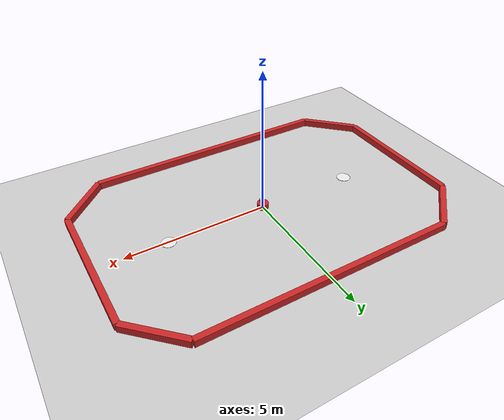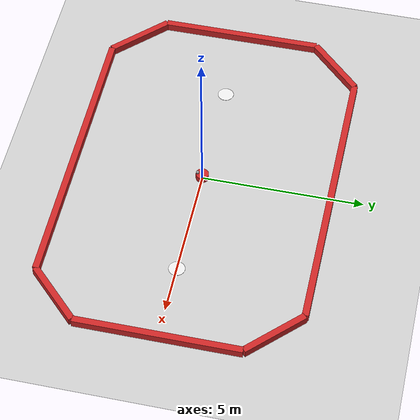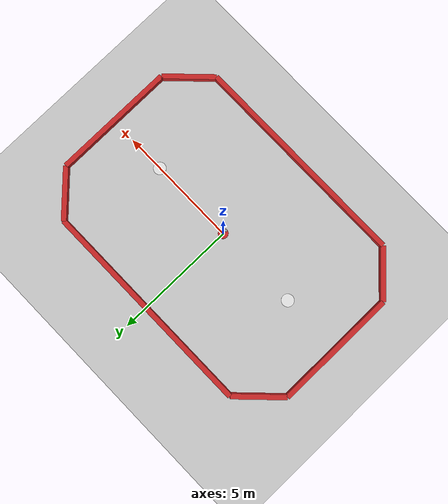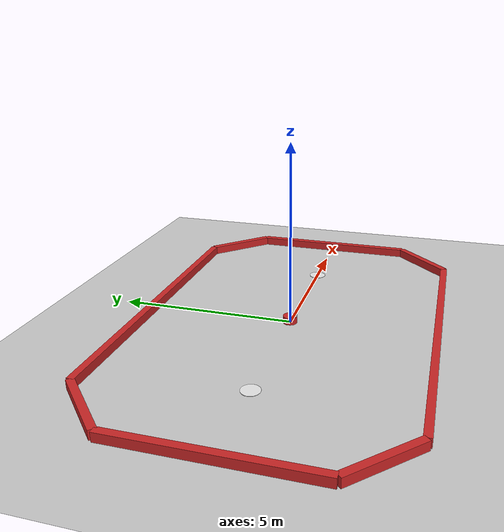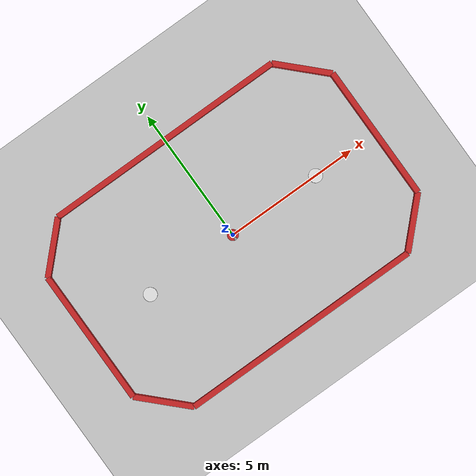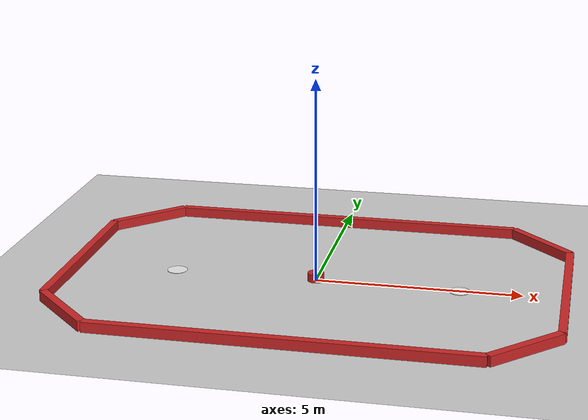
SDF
<?xml version="1.0"?>
<sdf version="1.4">
  <world name="default">
    <scene>
      <shadows>0</shadows>
    </scene>
    <physics type='ode'>
      <max_step_size>0.001</max_step_size>
      <real_time_factor>1</real_time_factor>
      <real_time_update_rate>2000</real_time_update_rate>
      <gravity>0 0 -9.8</gravity>
    </physics>

    <!-- World Camera -->
    <gui>
      <camera name='camera_view'>
	<pose>0 0 25 0 1.57079 1.57079</pose>
      </camera>
    </gui>

    <!-- Ground -->
    <include>
      <uri>model://ground_plane</uri>
    </include>

    <!-- Global light source -->
     <include>
      <uri>model://sun</uri>
    </include>

    <!-- Robot -->
    <include>
      <pose>0 0 0 0 0  -1.57079</pose>
      <name>Bug</name>
      <uri>model://DAC_Bug</uri>
    </include>

    <!-- Wall -->
    <include>
        <uri>model://DAC_Wall</uri>
    </include>

  </world>
</sdf>

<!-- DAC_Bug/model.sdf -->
<sdf version='1.4'>
  <!-- Robot model -->
  <model name="SDIC_Bug">
    <!-- Body elements -->
    <link name='bug'>
      <pose>0 0 .1 0 0 0</pose>
      <inertial>
	<mass>5</mass>
	<inertia>
	  <ixx>1</ixx>
	  <ixy>0</ixy>
	  <ixz>0</ixz>
	  <iyy>1</iyy>
	  <iyz>0</iyz>
	  <izz>1</izz>
	</inertia>
      </inertial>
      <collision name='collision'>
	<geometry>
	  <cylinder>
	    <radius>.2</radius>
	    <length>.2</length>
	  </cylinder>
	</geometry>
	<surface>
	  <friction>
	    <ode>
	      <mu>0.1</mu>
	      <mu2>0</mu2>
	      <slip1>0.0</slip1>
	      <slip2>0.0</slip2>
	    </ode>
	  </friction>
	</surface>
      </collision>

      <visual name='visual'>
	<geometry>
	  <cylinder>
	    <radius>.2</radius>
	    <length>.2</length>
	  </cylinder>
	</geometry>
	<material>
	  <script>
	    <uri>file://media/materials/scripts/gazebo.material</uri>
	    <name>Gazebo/Red</name>
	  </script>
	</material>
      </visual>

      <visual name='visualCamera'>
	<pose>0.15 0 .125 0 0 0</pose>
	<geometry>
	  <cylinder>
	    <radius>.05</radius>
	    <length>.05</length>
	  </cylinder>
	</geometry>
	<material>
	  <script>
	    <uri>file://media/materials/scripts/gazebo.material</uri>
	    <name>Gazebo/Grey</name>
	  </script>
	</material>
      </visual>

      <!-- Sensors -->
      <!-- Proximity sensor -->
      <sensor name="laser" type="ray">
	<pose>0 0 0.075 0 0 0 </pose>
	<ray>
	<scan>
	  <horizontal>
	    <samples>32</samples>
	    <resolution>1</resolution>
	    <min_angle>-3</min_angle>
	    <max_angle>3</max_angle>
	  </horizontal>
	</scan>
	<range>
	  <min>0.205</min>
	  <max>2.0</max>
	  <resolution>0.01</resolution>
	</range>
	<noise>
	  <type>gaussian</type>
	  <mean>0.0</mean>
	  <stddev>0.02</stddev>
	</noise>
      </ray>
      <always_on>1</always_on>
      <update_rate>25</update_rate>
      <visualize>0</visualize>
      </sensor>

      <!-- Proximity sensor -->
      <sensor name="laser_target" type="ray">
	<pose>0 0 0.25 0 0 0 </pose>
	<ray>
	<scan>
	  <horizontal>
	    <samples>32</samples>
	    <resolution>1</resolution>
	    <min_angle>-3</min_angle>
	    <max_angle>3</max_angle>
	  </horizontal>
	</scan>
	<range>
	  <min>0.26</min>
	  <max>2.5</max>
	  <resolution>0.01</resolution>
	</range>
	<noise>
	  <type>gaussian</type>
	  <mean>0.0</mean>
	  <stddev>0.02</stddev>
	</noise>
      </ray>
      <always_on>1</always_on>
      <update_rate>25</update_rate>
      <visualize>0</visualize>
      </sensor>

      <!-- Proximity sensor Gripper -->
      <sensor name="camera" type="camera">
	<pose>0.2 0 0.25 0 0.6 0</pose>
	<camera>
	  <horizontal_fov>0.8047</horizontal_fov>
          <image>
            <width>32</width>
            <height>28</height>
          </image>
          <clip>
            <near>0.02</near>
            <far>20</far>
          </clip>
	  <noise>
	    <type>gaussian</type>
	    <mean>0.0</mean>
	    <stddev>0.001</stddev>
	  </noise>
	</camera>
	<always_on>1</always_on>
	<update_rate>30</update_rate>
	<visualize>0</visualize>
      </sensor>
    </link>

    <plugin name="model_vel" filename="libvel_plugin.so" />
    <plugin name="model_reset" filename="libreset_plugin.so" />
  </model>
</sdf>

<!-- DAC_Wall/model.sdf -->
<sdf version='1.4'>
  <model name='Wall'>
    <link name='Wall_1'>
      <collision name='Wall_1_Collision'>
        <geometry>
          <box>
            <size>5 0.2 0.24999</size>
          </box>
        </geometry>
        <pose>0 0 0.124999 0 -0 0</pose>
      </collision>
      <visual name='Wall_1_Visual'>
        <pose>0 0 0.124999 0 -0 0</pose>
        <geometry>
          <box>
            <size>5 0.2 0.24999</size>
          </box>
        </geometry>
        <material>
          <script>
            <uri>file://media/materials/scripts/gazebo.material</uri>
            <name>Gazebo/Red</name>
          </script>
        </material>
      </visual>
      <velocity_decay>
        <linear>0</linear>
        <angular>0</angular>
      </velocity_decay>
      <pose>-6 0 0 0 0 -1.5708</pose>
    </link>

    <link name='Wall_2'>
      <collision name='Wall_2_Collision'>
        <geometry>
          <box>
            <size>9 0.2 0.24999</size>
          </box>
        </geometry>
        <pose>0 0 0.124999 0 -0 0</pose>
      </collision>
      <visual name='Wall_2_Visual'>
        <pose>0 0 0.124999 0 -0 0</pose>
        <geometry>
          <box>
            <size>9 0.2 0.24999</size>
          </box>
         </geometry>
        <material>
          <script>
            <uri>file://media/materials/scripts/gazebo.material</uri>
            <name>Gazebo/Red</name>
          </script>
        </material>
      </visual>
      <velocity_decay>
        <linear>0</linear>
        <angular>0</angular>
      </velocity_decay>
      <pose>0 -4 0 0 0 0</pose>
    </link>

 <link name='Wall_3'>
      <collision name='Wall_3_Collision'>
        <geometry>
          <box>
            <size>5 0.2 0.24999</size>
          </box>
        </geometry>
        <pose>0 0 0.124999 0 -0 0</pose>
      </collision>
      <visual name='Wall_3_Visual'>
        <pose>0 0 0.124999 0 -0 0</pose>
        <geometry>
          <box>
            <size>5 0.2 0.24999</size>
          </box>
        </geometry>
        <material>
          <script>
            <uri>file://media/materials/scripts/gazebo.material</uri>
            <name>Gazebo/Red</name>
          </script>
        </material>
      </visual>
      <velocity_decay>
        <linear>0</linear>
        <angular>0</angular>
      </velocity_decay>
      <pose>6 0 0 0 0 -1.5708</pose>
    </link>

    <link name='Wall_4'>
      <collision name='Wall_4_Collision'>
        <geometry>
          <box>
            <size>9 0.2 0.24999</size>
          </box>
        </geometry>
        <pose>0 0 0.124999 0 -0 0</pose>
      </collision>
      <visual name='Wall_4_Visual'>
        <pose>0 0 0.124999 0 -0 0</pose>
        <geometry>
          <box>
            <size>9 0.2 0.24999</size>
          </box>
        </geometry>
        <material>
          <script>
            <uri>file://media/materials/scripts/gazebo.material</uri>
            <name>Gazebo/Red</name>
          </script>
        </material>
      </visual>
      <velocity_decay>
        <linear>0</linear>
        <angular>0</angular>
      </velocity_decay>
      <pose>0 4 0 0 0 0</pose>
    </link>

    <link name='Wall_5'>
      <collision name='Wall_5_Collision'>
        <geometry>
          <box>
            <size> 2.121320 0.2 0.24999</size>
          </box>
        </geometry>
        <pose>0 0 0.124999 0 -0 0</pose>
      </collision>
      <visual name='Wall_5_Visual'>
        <pose>0 0 0.124999 0 -0 0</pose>
        <geometry>
          <box>
            <size>2.121320 0.2 0.24999</size>
          </box>
        </geometry>
        <material>
          <script>
            <uri>file://media/materials/scripts/gazebo.material</uri>
            <name>Gazebo/Red</name>
          </script>
        </material>
      </visual>
      <velocity_decay>
        <linear>0</linear>
        <angular>0</angular>
      </velocity_decay>
      <pose>5.25 3.25 0 0 0 -0.78539</pose>
    </link>

    <link name='Wall_6'>
      <collision name='Wall_6_Collision'>
        <geometry>
          <box>
            <size> 2.121320 0.2 0.24999</size>
          </box>
        </geometry>
        <pose>0 0 0.124999 0 -0 0</pose>
      </collision>
      <visual name='Wall_6_Visual'>
        <pose>0 0 0.124999 0 -0 0</pose>
        <geometry>
          <box>
            <size>2.121320 0.2 0.24999</size>
          </box>
        </geometry>
        <material>
          <script>
            <uri>file://media/materials/scripts/gazebo.material</uri>
            <name>Gazebo/Red</name>
          </script>
        </material>
      </visual>
      <velocity_decay>
        <linear>0</linear>
        <angular>0</angular>
      </velocity_decay>
      <pose>-5.25 -3.25 0 0 0 -0.78539</pose>
    </link>
<link name='Wall_6'>
      <collision name='Wall_6_Collision'>
        <geometry>
          <box>
            <size> 2.121320 0.2 0.24999</size>
          </box>
        </geometry>
        <pose>0 0 0.124999 0 -0 0</pose>
      </collision>
      <visual name='Wall_6_Visual'>
        <pose>0 0 0.124999 0 -0 0</pose>
        <geometry>
          <box>
            <size>2.121320 0.2 0.24999</size>
          </box>
        </geometry>
        <material>
          <script>
            <uri>file://media/materials/scripts/gazebo.material</uri>
            <name>Gazebo/Red</name>
          </script>
        </material>
      </visual>
      <velocity_decay>
        <linear>0</linear>
        <angular>0</angular>
      </velocity_decay>
      <pose>-5.25 -3.25 0 0 0 -0.78539</pose>
    </link>

    <link name='Wall_7'>
      <collision name='Wall_7_Collision'>
        <geometry>
          <box>
            <size> 2.121320 0.2 0.24999</size>
          </box>
        </geometry>
        <pose>0 0 0.124999 0 -0 0</pose>
      </collision>
      <visual name='Wall_7_Visual'>
        <pose>0 0 0.124999 0 -0 0</pose>
        <geometry>
          <box>
            <size>2.121320 0.2 0.24999</size>
          </box>
        </geometry>
        <material>
          <script>
            <uri>file://media/materials/scripts/gazebo.material</uri>
            <name>Gazebo/Red</name>
          </script>
        </material>
      </visual>
      <velocity_decay>
        <linear>0</linear>
        <angular>0</angular>
      </velocity_decay>
      <pose>-5.25 3.25 0 0 0 0.78539</pose>
    </link>

    <link name='Wall_8'>
      <collision name='Wall_8_Collision'>
        <geometry>
          <box>
            <size> 2.121320 0.2 0.24999</size>
          </box>
        </geometry>
        <pose>0 0 0.124999 0 -0 0</pose>
      </collision>
      <visual name='Wall_7_Visual'>
        <pose>0 0 0.124999 0 -0 0</pose>
        <geometry>
          <box>
            <size>2.121320 0.2 0.24999</size>
          </box>
        </geometry>
        <material>
          <script>
            <uri>file://media/materials/scripts/gazebo.material</uri>
            <name>Gazebo/Red</name>
          </script>
        </material>
      </visual>
      <velocity_decay>
        <linear>0</linear>
        <angular>0</angular>
      </velocity_decay>
      <pose> 5.25 -3.25 0 0 0 0.78539</pose>
    </link>

    <link name='Target_1'>
      <collision name='Target_1_Collision'>
        <geometry>
          <cylinder>
	    <radius> 0.24999 </radius>
	    <length> 0.24999 </length>
	  </cylinder>
        </geometry>
        <pose>0 0 0.34999 0 -0 0</pose>
      </collision>
      <visual name='Target_1_Visual'>
        <pose>0 0 0 0 0 0</pose>
        <geometry>
         <cylinder>
            <radius> 0.24999 </radius>
	    <length> 0.01 </length>
          </cylinder>
	</geometry>
        <material>
          <script>
            <uri>file://media/materials/scripts/gazebo.material</uri>
            <name>Gazebo/White</name>
          </script>
        </material>
      </visual>
      <velocity_decay>
        <linear>0</linear>
        <angular>0</angular>
      </velocity_decay>
      <pose> 3.5 0 0 0 0 0</pose>
    </link>

 <link name='Target_2'>
      <collision name='Target2_Collision'>
        <geometry>
          <cylinder>
            <radius> 0.24999 </radius>
	    <length> 0.24999 </length>
          </cylinder>
        </geometry>
        <pose>0 0 0.34999 0 -0 0</pose>
      </collision>
      <visual name='Target_2_Visual'>
        <pose>0 0 0 0 0 0</pose>
        <geometry>
         <cylinder>
            <radius> 0.24999 </radius>
	    <length> 0.01 </length>
          </cylinder>
	</geometry>
        <material>
          <script>
            <uri>file://media/materials/scripts/gazebo.material</uri>
            <name>Gazebo/White</name>
          </script>
        </material>
      </visual>
      <velocity_decay>
        <linear>0</linear>
        <angular>0</angular>
      </velocity_decay>
      <pose> -3.5 0 0 0 0 0</pose>
    </link>

    <static>1</static>
  </model>
</sdf>
